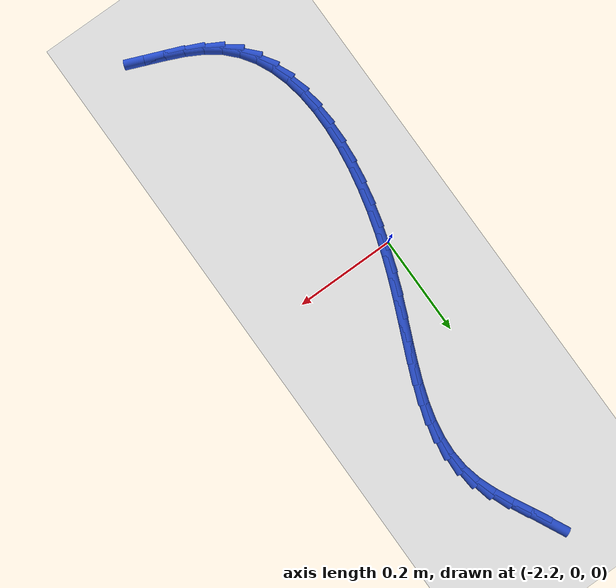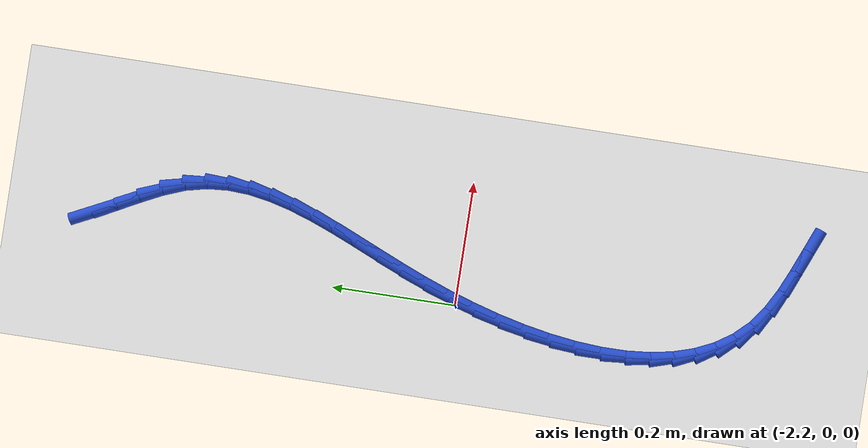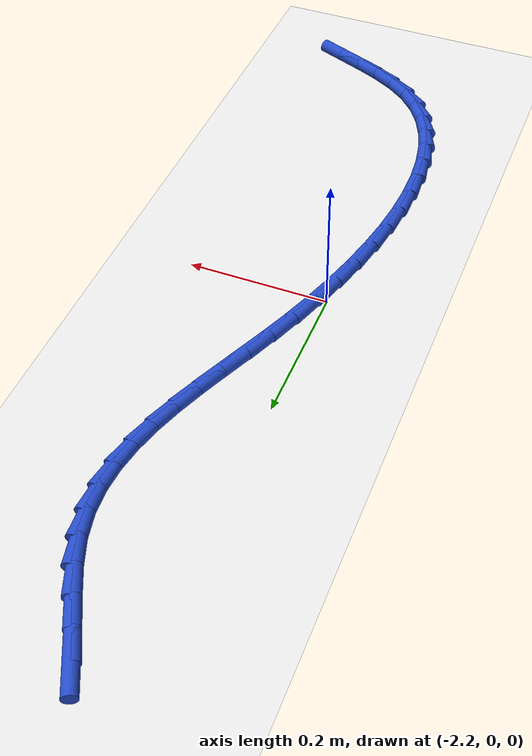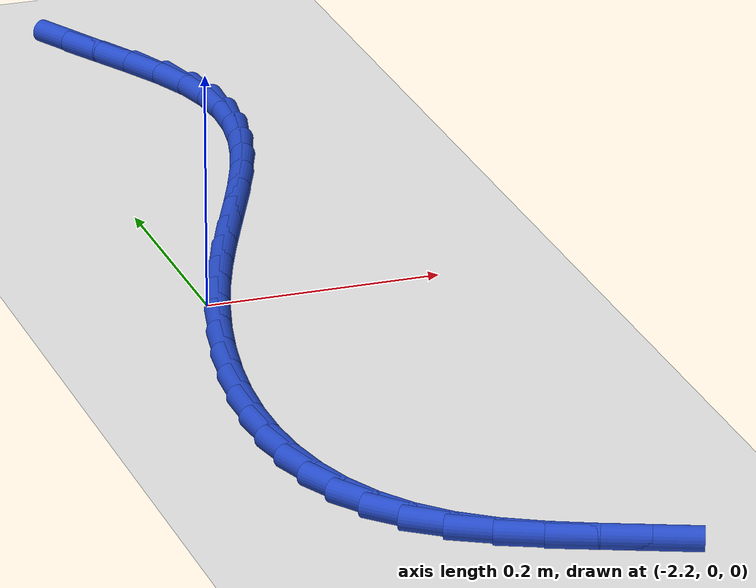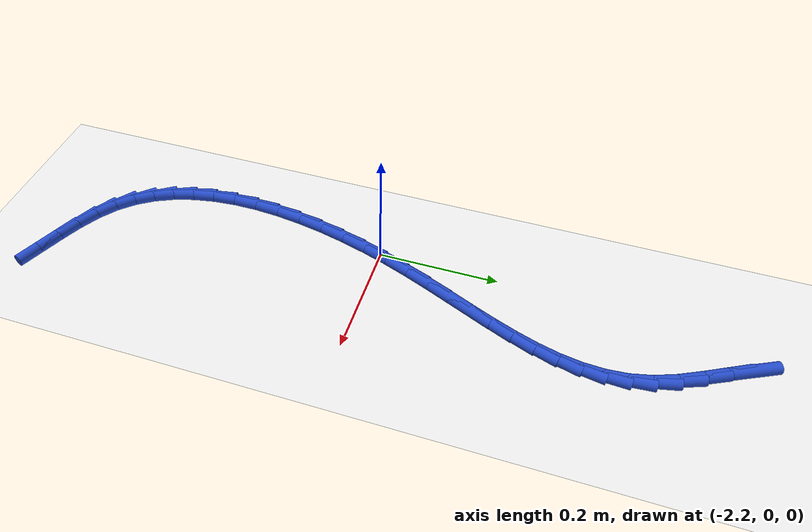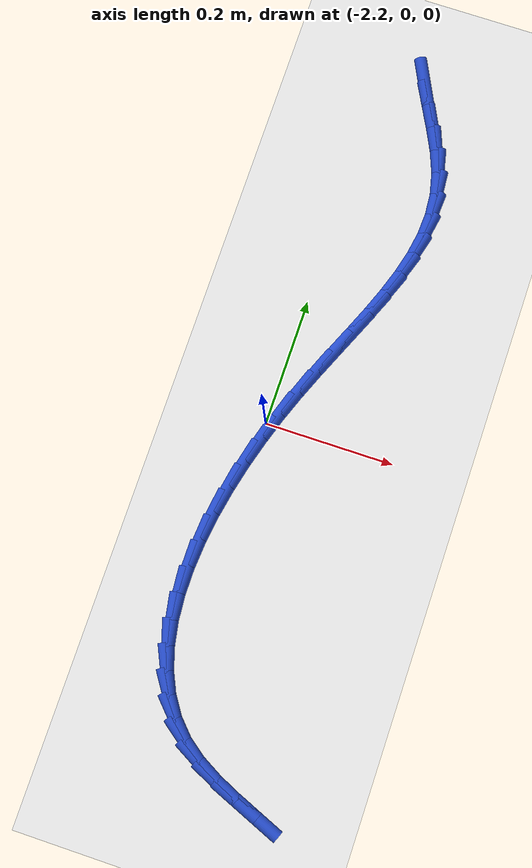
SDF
<sdf version="1.6">
 <world name="default">
  <model name="ground_plane">
   <static>1</static>
   <link name="link">
    <collision name="collision">
     <geometry><plane><normal>0 0 1</normal><size>100 100</size></plane></geometry>
     <surface><friction><ode><mu>100</mu><mu2>50</mu2></ode></friction></surface>
    </collision>
    <visual name="visual">
     <cast_shadows>0</cast_shadows>
     <geometry><plane><normal>0 0 1</normal><size>100 100</size></plane></geometry>
     <material>
      <script><uri>file://media/materials/scripts/gazebo.material</uri><name>Gazebo/WhiteGlow</name></script>
     </material>
    </visual>
   </link>
  </model>
  <model name="line">
   <link name="link_84">
    <pose>-2.1379130143118803 0.5970115993948594 0.01 0 1.57 -1.1139060431975505</pose>
    <collision name="collision">
     <geometry><cylinder><radius>0.01</radius><length>0.08</length></cylinder></geometry>
    </collision>
    <visual name="visual">
     <material>
      <script><name>Gazebo/Blue</name><uri>file://media/materials/scripts/gazebo.material</uri></script>
     </material>
     <geometry><cylinder><radius>0.01</radius><length>0.08</length></cylinder></geometry>
    </visual>
   </link>
   <link name="link_85">
    <pose>-2.121088676364369 0.5627866894968716 0.01 0 1.57 -1.0877010584055937</pose>
    <collision name="collision">
     <geometry><cylinder><radius>0.01</radius><length>0.08</length></cylinder></geometry>
    </collision>
    <visual name="visual">
     <material>
      <script><name>Gazebo/Blue</name><uri>file://media/materials/scripts/gazebo.material</uri></script>
     </material>
     <geometry><cylinder><radius>0.01</radius><length>0.08</length></cylinder></geometry>
    </visual>
   </link>
   <link name="link_86">
    <pose>-2.102908411074879 0.5281279979384725 0.01 0 1.57 -1.1158176320066149</pose>
    <collision name="collision">
     <geometry><cylinder><radius>0.01</radius><length>0.08</length></cylinder></geometry>
    </collision>
    <visual name="visual">
     <material>
      <script><name>Gazebo/Blue</name><uri>file://media/materials/scripts/gazebo.material</uri></script>
     </material>
     <geometry><cylinder><radius>0.01</radius><length>0.08</length></cylinder></geometry>
    </visual>
   </link>
   <link name="link_87">
    <pose>-2.085839438282374 0.4932371321878804 0.01 0 1.57 -1.202146368509431</pose>
    <collision name="collision">
     <geometry><cylinder><radius>0.01</radius><length>0.08</length></cylinder></geometry>
    </collision>
    <visual name="visual">
     <material>
      <script><name>Gazebo/Blue</name><uri>file://media/materials/scripts/gazebo.material</uri></script>
     </material>
     <geometry><cylinder><radius>0.01</radius><length>0.08</length></cylinder></geometry>
    </visual>
   </link>
   <link name="link_88">
    <pose>-2.0723489076983146 0.4583156923022074 0.01 0 1.57 -1.3437235163876373</pose>
    <collision name="collision">
     <geometry><cylinder><radius>0.01</radius><length>0.08</length></cylinder></geometry>
    </collision>
    <visual name="visual">
     <material>
      <script><name>Gazebo/Blue</name><uri>file://media/materials/scripts/gazebo.material</uri></script>
     </material>
     <geometry><cylinder><radius>0.01</radius><length>0.08</length></cylinder></geometry>
    </visual>
   </link>
   <link name="link_89">
    <pose>-2.0643049258501853 0.4235019711884534 0.01 0 1.57 -1.4909370865118012</pose>
    <collision name="collision">
     <geometry><cylinder><radius>0.01</radius><length>0.08</length></cylinder></geometry>
    </collision>
    <visual name="visual">
     <material>
      <script><name>Gazebo/Blue</name><uri>file://media/materials/scripts/gazebo.material</uri></script>
     </material>
     <geometry><cylinder><radius>0.01</radius><length>0.08</length></cylinder></geometry>
    </visual>
   </link>
   <link name="link_90">
    <pose>-2.0615211154640924 0.3887171429917401 0.01 0 1.57 1.5178118283621753</pose>
    <collision name="collision">
     <geometry><cylinder><radius>0.01</radius><length>0.08</length></cylinder></geometry>
    </collision>
    <visual name="visual">
     <material>
      <script><name>Gazebo/Blue</name><uri>file://media/materials/scripts/gazebo.material</uri></script>
     </material>
     <geometry><cylinder><radius>0.01</radius><length>0.08</length></cylinder></geometry>
    </visual>
   </link>
   <link name="link_91">
    <pose>-2.0633710134705554 0.35383587339457934 0.01 0 1.57 1.4054637270553043</pose>
    <collision name="collision">
     <geometry><cylinder><radius>0.01</radius><length>0.08</length></cylinder></geometry>
    </collision>
    <visual name="visual">
     <material>
      <script><name>Gazebo/Blue</name><uri>file://media/materials/scripts/gazebo.material</uri></script>
     </material>
     <geometry><cylinder><radius>0.01</radius><length>0.08</length></cylinder></geometry>
    </visual>
   </link>
   <link name="link_92">
    <pose>-2.0692281568000905 0.31873282807948267 0.01 0 1.57 1.3158765092581166</pose>
    <collision name="collision">
     <geometry><cylinder><radius>0.01</radius><length>0.08</length></cylinder></geometry>
    </collision>
    <visual name="visual">
     <material>
      <script><name>Gazebo/Blue</name><uri>file://media/materials/scripts/gazebo.material</uri></script>
     </material>
     <geometry><cylinder><radius>0.01</radius><length>0.08</length></cylinder></geometry>
    </visual>
   </link>
   <link name="link_93">
    <pose>-2.0784660823832186 0.283282672728962 0.01 0 1.57 1.2485937468909423</pose>
    <collision name="collision">
     <geometry><cylinder><radius>0.01</radius><length>0.08</length></cylinder></geometry>
    </collision>
    <visual name="visual">
     <material>
      <script><name>Gazebo/Blue</name><uri>file://media/materials/scripts/gazebo.material</uri></script>
     </material>
     <geometry><cylinder><radius>0.01</radius><length>0.08</length></cylinder></geometry>
    </visual>
   </link>
   <link name="link_94">
    <pose>-2.090458327150455 0.2473600730255291 0.01 0 1.57 1.2018632714265334</pose>
    <collision name="collision">
     <geometry><cylinder><radius>0.01</radius><length>0.08</length></cylinder></geometry>
    </collision>
    <visual name="visual">
     <material>
      <script><name>Gazebo/Blue</name><uri>file://media/materials/scripts/gazebo.material</uri></script>
     </material>
     <geometry><cylinder><radius>0.01</radius><length>0.08</length></cylinder></geometry>
    </visual>
   </link>
   <link name="link_95">
    <pose>-2.10457842803232 0.21083969465169575 0.01 0 1.57 1.1736425430467499</pose>
    <collision name="collision">
     <geometry><cylinder><radius>0.01</radius><length>0.08</length></cylinder></geometry>
    </collision>
    <visual name="visual">
     <material>
      <script><name>Gazebo/Blue</name><uri>file://media/materials/scripts/gazebo.material</uri></script>
     </material>
     <geometry><cylinder><radius>0.01</radius><length>0.08</length></cylinder></geometry>
    </visual>
   </link>
   <link name="link_96">
    <pose>-2.12019992195933 0.17359620328997405 0.01 0 1.57 1.1621113706600508</pose>
    <collision name="collision">
     <geometry><cylinder><radius>0.01</radius><length>0.08</length></cylinder></geometry>
    </collision>
    <visual name="visual">
     <material>
      <script><name>Gazebo/Blue</name><uri>file://media/materials/scripts/gazebo.material</uri></script>
     </material>
     <geometry><cylinder><radius>0.01</radius><length>0.08</length></cylinder></geometry>
    </visual>
   </link>
   <link name="link_97">
    <pose>-2.1366963458620036 0.13550426462287496 0.01 0 1.57 1.1658517908314228</pose>
    <collision name="collision">
     <geometry><cylinder><radius>0.01</radius><length>0.08</length></cylinder></geometry>
    </collision>
    <visual name="visual">
     <material>
      <script><name>Gazebo/Blue</name><uri>file://media/materials/scripts/gazebo.material</uri></script>
     </material>
     <geometry><cylinder><radius>0.01</radius><length>0.08</length></cylinder></geometry>
    </visual>
   </link>
   <link name="link_98">
    <pose>-2.1534412366708597 0.09643854433291074 0.01 0 1.57 1.1838470955053664</pose>
    <collision name="collision">
     <geometry><cylinder><radius>0.01</radius><length>0.08</length></cylinder></geometry>
    </collision>
    <visual name="visual">
     <material>
      <script><name>Gazebo/Blue</name><uri>file://media/materials/scripts/gazebo.material</uri></script>
     </material>
     <geometry><cylinder><radius>0.01</radius><length>0.08</length></cylinder></geometry>
    </visual>
   </link>
   <link name="link_99">
    <pose>-2.169808131316416 0.05627370810259315 0.01 0 1.57 1.2149187942352144</pose>
    <collision name="collision">
     <geometry><cylinder><radius>0.01</radius><length>0.08</length></cylinder></geometry>
    </collision>
    <visual name="visual">
     <material>
      <script><name>Gazebo/Blue</name><uri>file://media/materials/scripts/gazebo.material</uri></script>
     </material>
     <geometry><cylinder><radius>0.01</radius><length>0.08</length></cylinder></geometry>
    </visual>
   </link>
   <link name="link_100">
    <pose>-2.185185087732734 0.014904840106491844 0.01 0 1.57 1.2524216363619036</pose>
    <collision name="collision">
     <geometry><cylinder><radius>0.01</radius><length>0.08</length></cylinder></geometry>
    </collision>
    <visual name="visual">
     <material>
      <script><name>Gazebo/Blue</name><uri>file://media/materials/scripts/gazebo.material</uri></script>
     </material>
     <geometry><cylinder><radius>0.01</radius><length>0.08</length></cylinder></geometry>
    </visual>
   </link>
   <link name="link_101">
    <pose>-2.1991589819244215 -0.027493410423054084 0.01 0 1.57 1.2924592354068851</pose>
    <collision name="collision">
     <geometry><cylinder><radius>0.01</radius><length>0.08</length></cylinder></geometry>
    </collision>
    <visual name="visual">
     <material>
      <script><name>Gazebo/Blue</name><uri>file://media/materials/scripts/gazebo.material</uri></script>
     </material>
     <geometry><cylinder><radius>0.01</radius><length>0.08</length></cylinder></geometry>
    </visual>
   </link>
   <link name="link_102">
    <pose>-2.2114608169076604 -0.07054373221093789 0.01 0 1.57 1.3359701127240964</pose>
    <collision name="collision">
     <geometry><cylinder><radius>0.01</radius><length>0.08</length></cylinder></geometry>
    </collision>
    <visual name="visual">
     <material>
      <script><name>Gazebo/Blue</name><uri>file://media/materials/scripts/gazebo.material</uri></script>
     </material>
     <geometry><cylinder><radius>0.01</radius><length>0.08</length></cylinder></geometry>
    </visual>
   </link>
   <link name="link_103">
    <pose>-2.221824822406947 -0.11386427679439168 0.01 0 1.57 1.3841355755326645</pose>
    <collision name="collision">
     <geometry><cylinder><radius>0.01</radius><length>0.08</length></cylinder></geometry>
    </collision>
    <visual name="visual">
     <material>
      <script><name>Gazebo/Blue</name><uri>file://media/materials/scripts/gazebo.material</uri></script>
     </material>
     <geometry><cylinder><radius>0.01</radius><length>0.08</length></cylinder></geometry>
    </visual>
   </link>
   <link name="link_104">
    <pose>-2.229985228146776 -0.15707319571064746 0.01 0 1.57 1.4383450132101077</pose>
    <collision name="collision">
     <geometry><cylinder><radius>0.01</radius><length>0.08</length></cylinder></geometry>
    </collision>
    <visual name="visual">
     <material>
      <script><name>Gazebo/Blue</name><uri>file://media/materials/scripts/gazebo.material</uri></script>
     </material>
     <geometry><cylinder><radius>0.01</radius><length>0.08</length></cylinder></geometry>
    </visual>
   </link>
   <link name="link_105">
    <pose>-2.2356762638516434 -0.19978864049693723 0.01 0 1.57 1.500266121896246</pose>
    <collision name="collision">
     <geometry><cylinder><radius>0.01</radius><length>0.08</length></cylinder></geometry>
    </collision>
    <visual name="visual">
     <material>
      <script><name>Gazebo/Blue</name><uri>file://media/materials/scripts/gazebo.material</uri></script>
     </material>
     <geometry><cylinder><radius>0.01</radius><length>0.08</length></cylinder></geometry>
    </visual>
   </link>
   <link name="link_106">
    <pose>-2.238632159246045 -0.24162876269049316 0.01 0 1.57 -1.5696871129047354</pose>
    <collision name="collision">
     <geometry><cylinder><radius>0.01</radius><length>0.08</length></cylinder></geometry>
    </collision>
    <visual name="visual">
     <material>
      <script><name>Gazebo/Blue</name><uri>file://media/materials/scripts/gazebo.material</uri></script>
     </material>
     <geometry><cylinder><radius>0.01</radius><length>0.08</length></cylinder></geometry>
    </visual>
   </link>
   <link name="link_107">
    <pose>-2.2385871440544776 -0.2822117138285474 0.01 0 1.57 -1.4859628839609003</pose>
    <collision name="collision">
     <geometry><cylinder><radius>0.01</radius><length>0.08</length></cylinder></geometry>
    </collision>
    <visual name="visual">
     <material>
      <script><name>Gazebo/Blue</name><uri>file://media/materials/scripts/gazebo.material</uri></script>
     </material>
     <geometry><cylinder><radius>0.01</radius><length>0.08</length></cylinder></geometry>
    </visual>
   </link>
   <link name="link_108">
    <pose>-2.235275448001436 -0.32115564544833186 0.01 0 1.57 -1.387514189107169</pose>
    <collision name="collision">
     <geometry><cylinder><radius>0.01</radius><length>0.08</length></cylinder></geometry>
    </collision>
    <visual name="visual">
     <material>
      <script><name>Gazebo/Blue</name><uri>file://media/materials/scripts/gazebo.material</uri></script>
     </material>
     <geometry><cylinder><radius>0.01</radius><length>0.08</length></cylinder></geometry>
    </visual>
   </link>
   <link name="link_109">
    <pose>-2.2284313008114167 -0.35807870908707873 0.01 0 1.57 -1.2717490858461065</pose>
    <collision name="collision">
     <geometry><cylinder><radius>0.01</radius><length>0.08</length></cylinder></geometry>
    </collision>
    <visual name="visual">
     <material>
      <script><name>Gazebo/Blue</name><uri>file://media/materials/scripts/gazebo.material</uri></script>
     </material>
     <geometry><cylinder><radius>0.01</radius><length>0.08</length></cylinder></geometry>
    </visual>
   </link>
   <link name="link_110">
    <pose>-2.217788932208915 -0.39259905628201996 0.01 0 1.57 -1.1368550361779817</pose>
    <collision name="collision">
     <geometry><cylinder><radius>0.01</radius><length>0.08</length></cylinder></geometry>
    </collision>
    <visual name="visual">
     <material>
      <script><name>Gazebo/Blue</name><uri>file://media/materials/scripts/gazebo.material</uri></script>
     </material>
     <geometry><cylinder><radius>0.01</radius><length>0.08</length></cylinder></geometry>
    </visual>
   </link>
   <link name="link_111">
    <pose>-2.203082571918427 -0.4243348385703877 0.01 0 1.57 -0.9830390859014116</pose>
    <collision name="collision">
     <geometry><cylinder><radius>0.01</radius><length>0.08</length></cylinder></geometry>
    </collision>
    <visual name="visual">
     <material>
      <script><name>Gazebo/Blue</name><uri>file://media/materials/scripts/gazebo.material</uri></script>
     </material>
     <geometry><cylinder><radius>0.01</radius><length>0.08</length></cylinder></geometry>
    </visual>
   </link>
   <link name="link_112">
    <pose>-2.184046449664449 -0.45290420748941407 0.01 0 1.57 -0.8139489587039839</pose>
    <collision name="collision">
     <geometry><cylinder><radius>0.01</radius><length>0.08</length></cylinder></geometry>
    </collision>
    <visual name="visual">
     <material>
      <script><name>Gazebo/Blue</name><uri>file://media/materials/scripts/gazebo.material</uri></script>
     </material>
     <geometry><cylinder><radius>0.01</radius><length>0.08</length></cylinder></geometry>
    </visual>
   </link>
   <link name="link_113">
    <pose>-2.160414795171476 -0.477925314576331 0.01 0 1.57 -0.6406316741151693</pose>
    <collision name="collision">
     <geometry><cylinder><radius>0.01</radius><length>0.08</length></cylinder></geometry>
    </collision>
    <visual name="visual">
     <material>
      <script><name>Gazebo/Blue</name><uri>file://media/materials/scripts/gazebo.material</uri></script>
     </material>
     <geometry><cylinder><radius>0.01</radius><length>0.08</length></cylinder></geometry>
    </visual>
   </link>
   <link name="link_114">
    <pose>-2.1320125385887168 -0.49909993884380294 0.01 0 1.57 -0.5049847324195368</pose>
    <collision name="collision">
     <geometry><cylinder><radius>0.01</radius><length>0.08</length></cylinder></geometry>
    </collision>
    <visual name="visual">
     <material>
      <script><name>Gazebo/Blue</name><uri>file://media/materials/scripts/gazebo.material</uri></script>
     </material>
     <geometry><cylinder><radius>0.01</radius><length>0.08</length></cylinder></geometry>
    </visual>
   </link>
   <link name="link_115">
    <pose>-2.0996169818024 -0.517007963726758 0.01 0 1.57 -0.42231014592571603</pose>
    <collision name="collision">
     <geometry><cylinder><radius>0.01</radius><length>0.08</length></cylinder></geometry>
    </collision>
    <visual name="visual">
     <material>
      <script><name>Gazebo/Blue</name><uri>file://media/materials/scripts/gazebo.material</uri></script>
     </material>
     <geometry><cylinder><radius>0.01</radius><length>0.08</length></cylinder></geometry>
    </visual>
   </link>
   <link name="link_116">
    <pose>-2.0645746481768357 -0.532754105430474 0.01 0 1.57 -0.38434520778291553</pose>
    <collision name="collision">
     <geometry><cylinder><radius>0.01</radius><length>0.08</length></cylinder></geometry>
    </collision>
    <visual name="visual">
     <material>
      <script><name>Gazebo/Blue</name><uri>file://media/materials/scripts/gazebo.material</uri></script>
     </material>
     <geometry><cylinder><radius>0.01</radius><length>0.08</length></cylinder></geometry>
    </visual>
   </link>
   <link name="link_117">
    <pose>-2.0282397090836985 -0.5474501317650108 0.01 0 1.57 -0.38639418088576244</pose>
    <collision name="collision">
     <geometry><cylinder><radius>0.01</radius><length>0.08</length></cylinder></geometry>
    </collision>
    <visual name="visual">
     <material>
      <script><name>Gazebo/Blue</name><uri>file://media/materials/scripts/gazebo.material</uri></script>
     </material>
     <geometry><cylinder><radius>0.01</radius><length>0.08</length></cylinder></geometry>
    </visual>
   </link>
  </model>
 </world>
</sdf>
